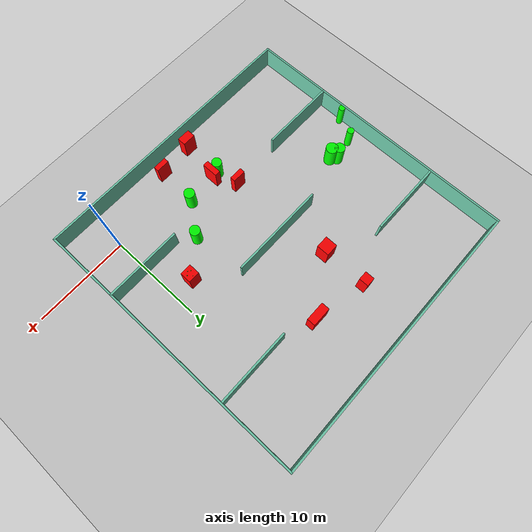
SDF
<sdf version="1.7">
 <world name="default">
  <light name="sun" type="directional">
   <pose>0 0 10 0 -0 0</pose>
   <diffuse>0.8 0.8 0.8 1</diffuse>
   <specular>0.2 0.2 0.2 1</specular>
   <attenuation>
    <range>1000</range>
    <constant>0.9</constant>
    <linear>0.01</linear>
    <quadratic>0.001</quadratic>
   </attenuation>
   <direction>-0.5 0.1 -0.9</direction>
   <spot><inner_angle>0</inner_angle><outer_angle>0</outer_angle><falloff>0</falloff></spot>
  </light>
  <model name="ground_plane">
   <static>1</static>
   <link name="link">
    <collision name="collision">
     <geometry><plane><normal>0 0 1</normal><size>100 100</size></plane></geometry>
     <surface>
      <contact><collide_bitmask>65535</collide_bitmask></contact>
      <friction><ode><mu>100</mu><mu2>50</mu2></ode></friction>
     </surface>
    </collision>
    <visual name="visual">
     <cast_shadows>0</cast_shadows>
     <geometry><plane><normal>0 0 1</normal><size>100 100</size></plane></geometry>
     <material>
      <script><uri>file://media/materials/scripts/gazebo.material</uri><name>Gazebo/Grey</name></script>
     </material>
    </visual>
   </link>
  </model>
  <gravity>0 0 -9.8</gravity>
  <magnetic_field>6e-06 2.3e-05 -4.2e-05</magnetic_field>
  <atmosphere type="adiabatic"/>
  <physics type="ode">
   <max_step_size>0.001</max_step_size>
   <real_time_factor>1</real_time_factor>
   <real_time_update_rate>1000</real_time_update_rate>
  </physics>
  <scene><ambient>0.4 0.4 0.4 1</ambient><background>0.7 0.7 0.7 1</background><shadows>1</shadows></scene>
  <spherical_coordinates>
   <surface_model>EARTH_WGS84</surface_model>
   <latitude_deg>0</latitude_deg>
   <longitude_deg>0</longitude_deg>
   <elevation>0</elevation>
   <heading_deg>0</heading_deg>
  </spherical_coordinates>
  <model name="my_base_walls">
   <link name="Wall_10">
    <collision name="Wall_10_Collision">
     <geometry><box><size>8.2 0.2 2.5</size></box></geometry>
     <pose>0 0 1.25 0 -0 0</pose>
    </collision>
    <visual name="Wall_10_Visual">
     <pose>0 0 1.25 0 -0 0</pose>
     <geometry><box><size>8.2 0.2 2.5</size></box></geometry>
     <material>
      <script><uri>file://media/materials/scripts/gazebo.material</uri><name>Gazebo/Grey</name></script>
      <ambient>0.435294 0.796078 0.67451 1</ambient>
     </material>
     <meta><layer>0</layer></meta>
    </visual>
    <pose>-11 -7 0 0 -0 0</pose>
   </link>
   <link name="Wall_12">
    <collision name="Wall_12_Collision">
     <geometry><box><size>8.2 0.2 2.5</size></box></geometry>
     <pose>0 0 1.25 0 -0 0</pose>
    </collision>
    <visual name="Wall_12_Visual">
     <pose>0 0 1.25 0 -0 0</pose>
     <geometry><box><size>8.2 0.2 2.5</size></box></geometry>
     <material>
      <script><uri>file://media/materials/scripts/gazebo.material</uri><name>Gazebo/Grey</name></script>
      <ambient>0.435294 0.796078 0.67451 1</ambient>
     </material>
     <meta><layer>0</layer></meta>
    </visual>
    <pose>-11 7 0 0 -0 0</pose>
   </link>
   <link name="Wall_14">
    <collision name="Wall_14_Collision">
     <geometry><box><size>8.2 0.2 2.5</size></box></geometry>
     <pose>0 0 1.25 0 -0 0</pose>
    </collision>
    <visual name="Wall_14_Visual">
     <pose>0 0 1.25 0 -0 0</pose>
     <geometry><box><size>8.2 0.2 2.5</size></box></geometry>
     <material>
      <script><uri>file://media/materials/scripts/gazebo.material</uri><name>Gazebo/Grey</name></script>
      <ambient>0.435294 0.796078 0.67451 1</ambient>
     </material>
     <meta><layer>0</layer></meta>
    </visual>
    <pose>11 7 0 0 -0 3.14159</pose>
   </link>
   <link name="Wall_16">
    <collision name="Wall_16_Collision">
     <geometry><box><size>10.2 0.2 2.5</size></box></geometry>
     <pose>0 0 1.25 0 -0 0</pose>
    </collision>
    <visual name="Wall_16_Visual">
     <pose>0 0 1.25 0 -0 0</pose>
     <geometry><box><size>10.2 0.2 2.5</size></box></geometry>
     <material>
      <script><uri>file://media/materials/scripts/gazebo.material</uri><name>Gazebo/Grey</name></script>
      <ambient>0.435294 0.796078 0.67451 1</ambient>
     </material>
     <meta><layer>0</layer></meta>
    </visual>
    <pose>0 0 0 0 -0 3.14159</pose>
   </link>
   <link name="Wall_2">
    <collision name="Wall_2_Collision">
     <geometry><box><size>30.2 0.2 2.5</size></box></geometry>
     <pose>0 0 1.25 0 -0 0</pose>
    </collision>
    <visual name="Wall_2_Visual">
     <pose>0 0 1.25 0 -0 0</pose>
     <geometry><box><size>30.2 0.2 2.5</size></box></geometry>
     <material>
      <script><uri>file://media/materials/scripts/gazebo.material</uri><name>Gazebo/Grey</name></script>
      <ambient>0.435294 0.796078 0.67451 1</ambient>
     </material>
     <meta><layer>0</layer></meta>
    </visual>
    <pose>0 -15 0 0 -0 3.14159</pose>
   </link>
   <link name="Wall_3">
    <collision name="Wall_3_Collision">
     <geometry><box><size>30.2 0.2 2.5</size></box></geometry>
     <pose>0 0 1.25 0 -0 0</pose>
    </collision>
    <visual name="Wall_3_Visual">
     <pose>0 0 1.25 0 -0 0</pose>
     <geometry><box><size>30.2 0.2 2.5</size></box></geometry>
     <material>
      <script><uri>file://media/materials/scripts/gazebo.material</uri><name>Gazebo/Grey</name></script>
      <ambient>0.435294 0.796078 0.67451 1</ambient>
     </material>
     <meta><layer>0</layer></meta>
    </visual>
    <pose>-15 0 0 0 -0 1.5708</pose>
   </link>
   <link name="Wall_4">
    <collision name="Wall_4_Collision">
     <geometry><box><size>30.2 0.2 2.5</size></box></geometry>
     <pose>0 0 1.25 0 -0 0</pose>
    </collision>
    <visual name="Wall_4_Visual">
     <pose>0 0 1.25 0 -0 0</pose>
     <geometry><box><size>30.2 0.2 2.5</size></box></geometry>
     <material>
      <script><uri>file://media/materials/scripts/gazebo.material</uri><name>Gazebo/Grey</name></script>
      <ambient>0.435294 0.796078 0.67451 1</ambient>
     </material>
     <meta><layer>0</layer></meta>
    </visual>
    <pose>0 15 0 0 -0 0</pose>
   </link>
   <link name="Wall_6">
    <collision name="Wall_6_Collision">
     <geometry><box><size>30.2 0.2 2.5</size></box></geometry>
     <pose>0 0 1.25 0 -0 0</pose>
    </collision>
    <visual name="Wall_6_Visual">
     <pose>0 0 1.25 0 -0 0</pose>
     <geometry><box><size>30.2 0.2 2.5</size></box></geometry>
     <material>
      <script><uri>file://media/materials/scripts/gazebo.material</uri><name>Gazebo/Grey</name></script>
      <ambient>0.435294 0.796078 0.67451 1</ambient>
     </material>
     <meta><layer>0</layer></meta>
    </visual>
    <pose>15 0 0 0 -0 1.5708</pose>
   </link>
   <link name="Wall_8">
    <collision name="Wall_8_Collision">
     <geometry><box><size>8.2 0.2 2.5</size></box></geometry>
     <pose>0 0 1.25 0 -0 0</pose>
    </collision>
    <visual name="Wall_8_Visual">
     <pose>0 0 1.25 0 -0 0</pose>
     <geometry><box><size>8.2 0.2 2.5</size></box></geometry>
     <material>
      <script><uri>file://media/materials/scripts/gazebo.material</uri><name>Gazebo/Grey</name></script>
      <ambient>0.435294 0.796078 0.67451 1</ambient>
     </material>
     <meta><layer>0</layer></meta>
    </visual>
    <pose>11 -7 0 0 -0 3.14159</pose>
   </link>
   <static>1</static>
   <pose>-11 11 0 0 -0 0</pose>
  </model>
  <model name="cylinder1">
   <static>1</static>
   <link name="link">
    <inertial>
     <mass>1</mass>
     <inertia><ixx>0.5</ixx><ixy>0</ixy><ixz>0</ixz><iyy>0.5</iyy><iyz>0</iyz><izz>1</izz></inertia>
    </inertial>
    <collision name="collision">
     <geometry><cylinder><radius>0.5533282754916355</radius><length>2.5</length></cylinder></geometry>
    </collision>
    <visual name="visual">
     <geometry><cylinder><radius>0.5533282754916355</radius><length>2.5</length></cylinder></geometry>
     <material>
      <ambient>0 1 0 1</ambient>
      <diffuse>0 1 0 1</diffuse>
      <specular>0.1 0.1 0.1 1</specular>
      <emissive>0 0 0 0</emissive>
     </material>
    </visual>
   </link>
   <pose>-8.011918529775885 2.0046350093960443 1.25 0 0 0</pose>
  </model>
  <model name="cylinder2">
   <static>1</static>
   <link name="link">
    <inertial>
     <mass>1</mass>
     <inertia><ixx>0.5</ixx><ixy>0</ixy><ixz>0</ixz><iyy>0.5</iyy><iyz>0</iyz><izz>1</izz></inertia>
    </inertial>
    <collision name="collision">
     <geometry><cylinder><radius>0.33160180840380726</radius><length>2.5</length></cylinder></geometry>
    </collision>
    <visual name="visual">
     <geometry><cylinder><radius>0.33160180840380726</radius><length>2.5</length></cylinder></geometry>
     <material>
      <ambient>0 1 0 1</ambient>
      <diffuse>0 1 0 1</diffuse>
      <specular>0.1 0.1 0.1 1</specular>
      <emissive>0 0 0 0</emissive>
     </material>
    </visual>
   </link>
   <pose>-25.665893862017917 6.816797146144674 1.25 0 0 0</pose>
  </model>
  <model name="cylinder3">
   <static>1</static>
   <link name="link">
    <inertial>
     <mass>1</mass>
     <inertia><ixx>0.5</ixx><ixy>0</ixy><ixz>0</ixz><iyy>0.5</iyy><iyz>0</iyz><izz>1</izz></inertia>
    </inertial>
    <collision name="collision">
     <geometry><cylinder><radius>0.6348788574355926</radius><length>2.5</length></cylinder></geometry>
    </collision>
    <visual name="visual">
     <geometry><cylinder><radius>0.6348788574355926</radius><length>2.5</length></cylinder></geometry>
     <material>
      <ambient>0 1 0 1</ambient>
      <diffuse>0 1 0 1</diffuse>
      <specular>0.1 0.1 0.1 1</specular>
      <emissive>0 0 0 0</emissive>
     </material>
    </visual>
   </link>
   <pose>-21.31614258529432 9.111928651239836 1.25 0 0 0</pose>
  </model>
  <model name="cylinder4">
   <static>1</static>
   <link name="link">
    <inertial>
     <mass>1</mass>
     <inertia><ixx>0.5</ixx><ixy>0</ixy><ixz>0</ixz><iyy>0.5</iyy><iyz>0</iyz><izz>1</izz></inertia>
    </inertial>
    <collision name="collision">
     <geometry><cylinder><radius>0.5580151082943795</radius><length>2.5</length></cylinder></geometry>
    </collision>
    <visual name="visual">
     <geometry><cylinder><radius>0.5580151082943795</radius><length>2.5</length></cylinder></geometry>
     <material>
      <ambient>0 1 0 1</ambient>
      <diffuse>0 1 0 1</diffuse>
      <specular>0.1 0.1 0.1 1</specular>
      <emissive>0 0 0 0</emissive>
     </material>
    </visual>
   </link>
   <pose>-21.8720923308935 9.663941832530208 1.25 0 0 0</pose>
  </model>
  <model name="cylinder5">
   <static>1</static>
   <link name="link">
    <inertial>
     <mass>1</mass>
     <inertia><ixx>0.5</ixx><ixy>0</ixy><ixz>0</ixz><iyy>0.5</iyy><iyz>0</iyz><izz>1</izz></inertia>
    </inertial>
    <collision name="collision">
     <geometry><cylinder><radius>0.36386676256927547</radius><length>2.5</length></cylinder></geometry>
    </collision>
    <visual name="visual">
     <geometry><cylinder><radius>0.36386676256927547</radius><length>2.5</length></cylinder></geometry>
     <material>
      <ambient>0 1 0 1</ambient>
      <diffuse>0 1 0 1</diffuse>
      <specular>0.1 0.1 0.1 1</specular>
      <emissive>0 0 0 0</emissive>
     </material>
    </visual>
   </link>
   <pose>-24.166252650794018 9.205073677587869 1.25 0 0 0</pose>
  </model>
  <model name="cylinder6">
   <static>1</static>
   <link name="link">
    <inertial>
     <mass>1</mass>
     <inertia><ixx>0.5</ixx><ixy>0</ixy><ixz>0</ixz><iyy>0.5</iyy><iyz>0</iyz><izz>1</izz></inertia>
    </inertial>
    <collision name="collision">
     <geometry><cylinder><radius>0.3527389863453123</radius><length>2.5</length></cylinder></geometry>
    </collision>
    <visual name="visual">
     <geometry><cylinder><radius>0.3527389863453123</radius><length>2.5</length></cylinder></geometry>
     <material>
      <ambient>0 1 0 1</ambient>
      <diffuse>0 1 0 1</diffuse>
      <specular>0.1 0.1 0.1 1</specular>
      <emissive>0 0 0 0</emissive>
     </material>
    </visual>
   </link>
   <pose>-2.3108126033064167 7.9116318546801025 1.25 0 0 0</pose>
  </model>
  <model name="cylinder7">
   <static>1</static>
   <link name="link">
    <inertial>
     <mass>1</mass>
     <inertia><ixx>0.5</ixx><ixy>0</ixy><ixz>0</ixz><iyy>0.5</iyy><iyz>0</iyz><izz>1</izz></inertia>
    </inertial>
    <collision name="collision">
     <geometry><cylinder><radius>0.5216817895467174</radius><length>2.5</length></cylinder></geometry>
    </collision>
    <visual name="visual">
     <geometry><cylinder><radius>0.5216817895467174</radius><length>2.5</length></cylinder></geometry>
     <material>
      <ambient>0 1 0 1</ambient>
      <diffuse>0 1 0 1</diffuse>
      <specular>0.1 0.1 0.1 1</specular>
      <emissive>0 0 0 0</emissive>
     </material>
    </visual>
   </link>
   <pose>-12.256752692696475 1.6101242964266653 1.25 0 0 0</pose>
  </model>
  <model name="cylinder8">
   <static>1</static>
   <link name="link">
    <inertial>
     <mass>1</mass>
     <inertia><ixx>0.5</ixx><ixy>0</ixy><ixz>0</ixz><iyy>0.5</iyy><iyz>0</iyz><izz>1</izz></inertia>
    </inertial>
    <collision name="collision">
     <geometry><cylinder><radius>0.5432205580331679</radius><length>2.5</length></cylinder></geometry>
    </collision>
    <visual name="visual">
     <geometry><cylinder><radius>0.5432205580331679</radius><length>2.5</length></cylinder></geometry>
     <material>
      <ambient>0 1 0 1</ambient>
      <diffuse>0 1 0 1</diffuse>
      <specular>0.1 0.1 0.1 1</specular>
      <emissive>0 0 0 0</emissive>
     </material>
    </visual>
   </link>
   <pose>-5.618881325331039 5.179177175235589 1.25 0 0 0</pose>
  </model>
  <model name="box1">
   <static>1</static>
   <link name="link">
    <inertial>
     <mass>1</mass>
     <inertia><ixx>0.083</ixx><ixy>0</ixy><ixz>0</ixz><iyy>0.083</iyy><iyz>0</iyz><izz>0.083</izz></inertia>
    </inertial>
    <collision name="collision">
     <geometry><box><size>1.4054463480589994 0.549746910488076 2.5</size></box></geometry>
    </collision>
    <visual name="visual">
     <geometry><box><size>1.4054463480589994 0.549746910488076 2.5</size></box></geometry>
     <material>
      <ambient>1 0 0 1</ambient>
      <diffuse>1 0 0 1</diffuse>
      <specular>0.1 0.1 0.1 1</specular>
      <emissive>0 0 0 0</emissive>
     </material>
    </visual>
    <sensor name="my_contact" type="contact">
     <contact><collision>box_collision</collision><topic>__default_topic__</topic></contact>
    </sensor>
   </link>
   <pose>-12.649711036677392 4.116166874238297 1.25 0 0 0</pose>
  </model>
  <model name="box2">
   <static>1</static>
   <link name="link">
    <inertial>
     <mass>1</mass>
     <inertia><ixx>0.083</ixx><ixy>0</ixy><ixz>0</ixz><iyy>0.083</iyy><iyz>0</iyz><izz>0.083</izz></inertia>
    </inertial>
    <collision name="collision">
     <geometry><box><size>1.2861619531416486 1.2996923834264285 2.5</size></box></geometry>
    </collision>
    <visual name="visual">
     <geometry><box><size>1.2861619531416486 1.2996923834264285 2.5</size></box></geometry>
     <material>
      <ambient>1 0 0 1</ambient>
      <diffuse>1 0 0 1</diffuse>
      <specular>0.1 0.1 0.1 1</specular>
      <emissive>0 0 0 0</emissive>
     </material>
    </visual>
    <sensor name="my_contact" type="contact">
     <contact><collision>box_collision</collision><topic>__default_topic__</topic></contact>
    </sensor>
   </link>
   <pose>-12.941057677288748 15.508490885530353 1.25 0 0 0</pose>
  </model>
  <model name="box3">
   <static>1</static>
   <link name="link">
    <inertial>
     <mass>1</mass>
     <inertia><ixx>0.083</ixx><ixy>0</ixy><ixz>0</ixz><iyy>0.083</iyy><iyz>0</iyz><izz>0.083</izz></inertia>
    </inertial>
    <collision name="collision">
     <geometry><box><size>0.94992407015413 0.9952881460491315 2.5</size></box></geometry>
    </collision>
    <visual name="visual">
     <geometry><box><size>0.94992407015413 0.9952881460491315 2.5</size></box></geometry>
     <material>
      <ambient>1 0 0 1</ambient>
      <diffuse>1 0 0 1</diffuse>
      <specular>0.1 0.1 0.1 1</specular>
      <emissive>0 0 0 0</emissive>
     </material>
    </visual>
    <sensor name="my_contact" type="contact">
     <contact><collision>box_collision</collision><topic>__default_topic__</topic></contact>
    </sensor>
   </link>
   <pose>-12.953064341523357 20.282347968439908 1.25 0 0 0</pose>
  </model>
  <model name="box4">
   <static>1</static>
   <link name="link">
    <inertial>
     <mass>1</mass>
     <inertia><ixx>0.083</ixx><ixy>0</ixy><ixz>0</ixz><iyy>0.083</iyy><iyz>0</iyz><izz>0.083</izz></inertia>
    </inertial>
    <collision name="collision">
     <geometry><box><size>1.4105665095288384 0.5417790660704018 2.5</size></box></geometry>
    </collision>
    <visual name="visual">
     <geometry><box><size>1.4105665095288384 0.5417790660704018 2.5</size></box></geometry>
     <material>
      <ambient>1 0 0 1</ambient>
      <diffuse>1 0 0 1</diffuse>
      <specular>0.1 0.1 0.1 1</specular>
      <emissive>0 0 0 0</emissive>
     </material>
    </visual>
    <sensor name="my_contact" type="contact">
     <contact><collision>box_collision</collision><topic>__default_topic__</topic></contact>
    </sensor>
   </link>
   <pose>-8.329566378622472 -2.2801839763903673 1.25 0 0 0</pose>
  </model>
  <model name="box5">
   <static>1</static>
   <link name="link">
    <inertial>
     <mass>1</mass>
     <inertia><ixx>0.083</ixx><ixy>0</ixy><ixz>0</ixz><iyy>0.083</iyy><iyz>0</iyz><izz>0.083</izz></inertia>
    </inertial>
    <collision name="collision">
     <geometry><box><size>2.032468761685082 0.8530986001171792 2.5</size></box></geometry>
    </collision>
    <visual name="visual">
     <geometry><box><size>2.032468761685082 0.8530986001171792 2.5</size></box></geometry>
     <material>
      <ambient>1 0 0 1</ambient>
      <diffuse>1 0 0 1</diffuse>
      <specular>0.1 0.1 0.1 1</specular>
      <emissive>0 0 0 0</emissive>
     </material>
    </visual>
    <sensor name="my_contact" type="contact">
     <contact><collision>box_collision</collision><topic>__default_topic__</topic></contact>
    </sensor>
   </link>
   <pose>-7.431956771126746 19.123332157289866 1.25 0 0 0</pose>
  </model>
  <model name="box6">
   <static>1</static>
   <link name="link">
    <inertial>
     <mass>1</mass>
     <inertia><ixx>0.083</ixx><ixy>0</ixy><ixz>0</ixz><iyy>0.083</iyy><iyz>0</iyz><izz>0.083</izz></inertia>
    </inertial>
    <collision name="collision">
     <geometry><box><size>1.2009831704950058 1.1591532154878226 2.5</size></box></geometry>
    </collision>
    <visual name="visual">
     <geometry><box><size>1.2009831704950058 1.1591532154878226 2.5</size></box></geometry>
     <material>
      <ambient>1 0 0 1</ambient>
      <diffuse>1 0 0 1</diffuse>
      <specular>0.1 0.1 0.1 1</specular>
      <emissive>0 0 0 0</emissive>
     </material>
    </visual>
    <sensor name="my_contact" type="contact">
     <contact><collision>box_collision</collision><topic>__default_topic__</topic></contact>
    </sensor>
   </link>
   <pose>-2.3054151237530256 7.864227775750475 1.25 0 0 0</pose>
  </model>
  <model name="box7">
   <static>1</static>
   <link name="link">
    <inertial>
     <mass>1</mass>
     <inertia><ixx>0.083</ixx><ixy>0</ixy><ixz>0</ixz><iyy>0.083</iyy><iyz>0</iyz><izz>0.083</izz></inertia>
    </inertial>
    <collision name="collision">
     <geometry><box><size>0.6115457699929759 1.6787617340496437 2.5</size></box></geometry>
    </collision>
    <visual name="visual">
     <geometry><box><size>0.6115457699929759 1.6787617340496437 2.5</size></box></geometry>
     <material>
      <ambient>1 0 0 1</ambient>
      <diffuse>1 0 0 1</diffuse>
      <specular>0.1 0.1 0.1 1</specular>
      <emissive>0 0 0 0</emissive>
     </material>
    </visual>
    <sensor name="my_contact" type="contact">
     <contact><collision>box_collision</collision><topic>__default_topic__</topic></contact>
    </sensor>
   </link>
   <pose>-11.4375414303979 1.7171661438424177 1.25 0 0 0</pose>
  </model>
  <model name="box8">
   <static>1</static>
   <link name="link">
    <inertial>
     <mass>1</mass>
     <inertia><ixx>0.083</ixx><ixy>0</ixy><ixz>0</ixz><iyy>0.083</iyy><iyz>0</iyz><izz>0.083</izz></inertia>
    </inertial>
    <collision name="collision">
     <geometry><box><size>1.401052968077881 0.8881792689007378 2.5</size></box></geometry>
    </collision>
    <visual name="visual">
     <geometry><box><size>1.401052968077881 0.8881792689007378 2.5</size></box></geometry>
     <material>
      <ambient>1 0 0 1</ambient>
      <diffuse>1 0 0 1</diffuse>
      <specular>0.1 0.1 0.1 1</specular>
      <emissive>0 0 0 0</emissive>
     </material>
    </visual>
    <sensor name="my_contact" type="contact">
     <contact><collision>box_collision</collision><topic>__default_topic__</topic></contact>
    </sensor>
   </link>
   <pose>-12.203895242302425 -2.6632689012748902 1.25 0 0 0</pose>
  </model>
 </world>
</sdf>
